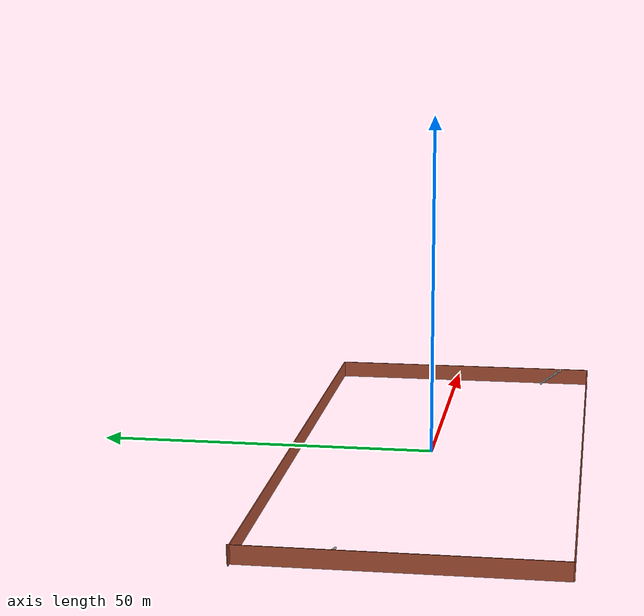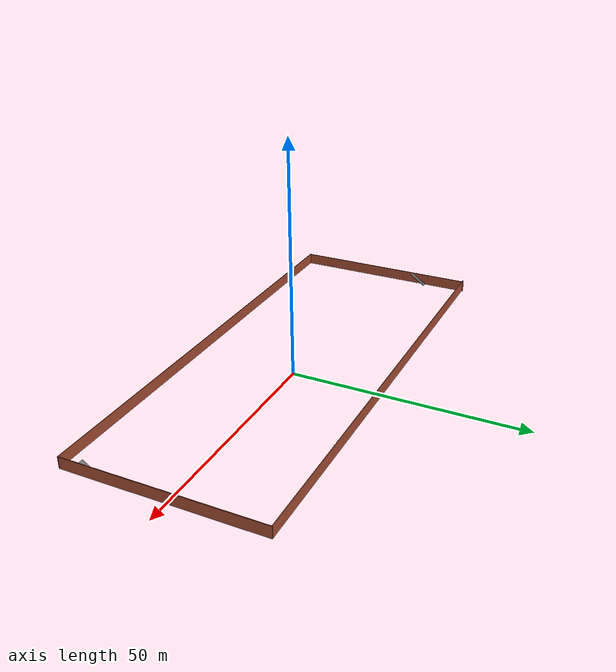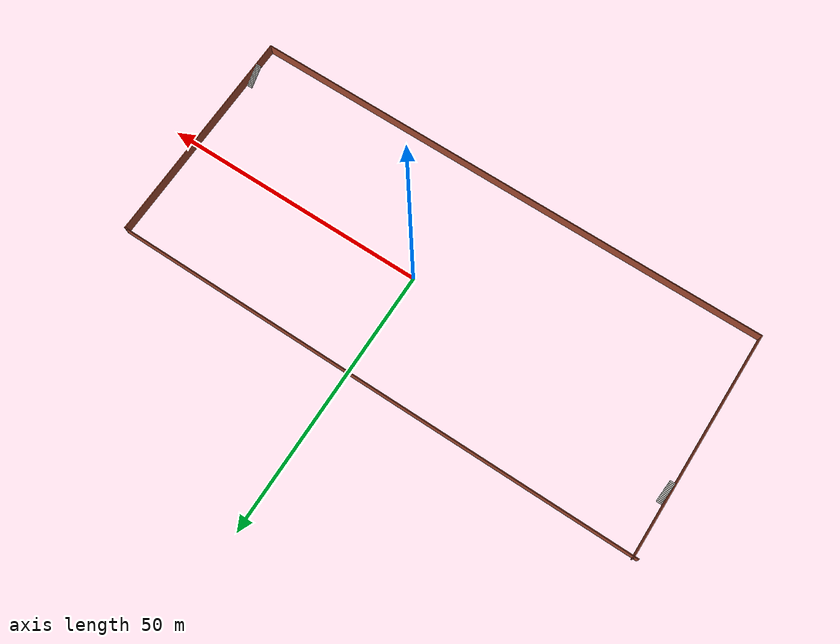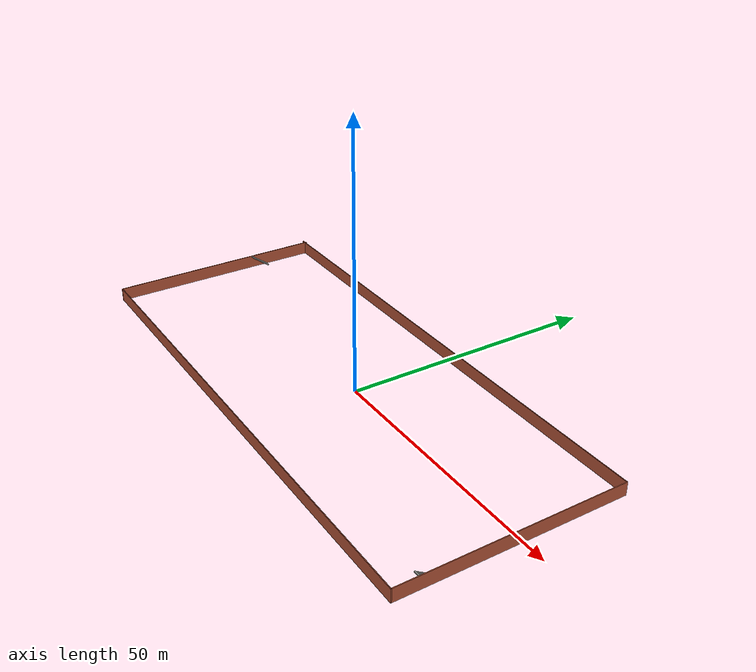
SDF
<?xml version='1.0'?>
<sdf version='1.7'>
  <model name='warehouse2'>
    <pose>-4.40076 -1.13581 0 0 -0 0</pose>
    <link name='Stairs_0'>
      <visual name='Stairs_0_Visual_0'>
        <pose>-48.4043 11.0815 0.083333 0 -0 0</pose>
        <geometry>
          <box>
            <size>1 0.233333 0.166667</size>
          </box>
        </geometry>
        <material>
          <script>
            <uri>file://media/materials/scripts/gazebo.material</uri>
            <name>Gazebo/CeilingTiled</name>
          </script>
          <ambient>1 1 1 1</ambient>
        </material>
        <meta>
          <layer>0</layer>
        </meta>
      </visual>
      <collision name='Stairs_0_Collision_0'>
        <geometry>
          <box>
            <size>1 0.233333 0.166667</size>
          </box>
        </geometry>
        <pose>-48.4043 11.0815 0.083333 0 -0 0</pose>
      </collision>
      <visual name='Stairs_0_Visual_1'>
        <pose>-48.4043 10.8482 0.25 0 -0 0</pose>
        <geometry>
          <box>
            <size>1 0.233333 0.166667</size>
          </box>
        </geometry>
        <material>
          <script>
            <uri>file://media/materials/scripts/gazebo.material</uri>
            <name>Gazebo/CeilingTiled</name>
          </script>
          <ambient>1 1 1 1</ambient>
        </material>
        <meta>
          <layer>0</layer>
        </meta>
      </visual>
      <collision name='Stairs_0_Collision_1'>
        <geometry>
          <box>
            <size>1 0.233333 0.166667</size>
          </box>
        </geometry>
        <pose>-48.4043 10.8482 0.25 0 -0 0</pose>
      </collision>
      <visual name='Stairs_0_Visual_2'>
        <pose>-48.4043 10.6148 0.416667 0 -0 0</pose>
        <geometry>
          <box>
            <size>1 0.233333 0.166667</size>
          </box>
        </geometry>
        <material>
          <script>
            <uri>file://media/materials/scripts/gazebo.material</uri>
            <name>Gazebo/CeilingTiled</name>
          </script>
          <ambient>1 1 1 1</ambient>
        </material>
        <meta>
          <layer>0</layer>
        </meta>
      </visual>
      <collision name='Stairs_0_Collision_2'>
        <geometry>
          <box>
            <size>1 0.233333 0.166667</size>
          </box>
        </geometry>
        <pose>-48.4043 10.6148 0.416667 0 -0 0</pose>
      </collision>
      <visual name='Stairs_0_Visual_3'>
        <pose>-48.4043 10.3815 0.583333 0 -0 0</pose>
        <geometry>
          <box>
            <size>1 0.233333 0.166667</size>
          </box>
        </geometry>
        <material>
          <script>
            <uri>file://media/materials/scripts/gazebo.material</uri>
            <name>Gazebo/CeilingTiled</name>
          </script>
          <ambient>1 1 1 1</ambient>
        </material>
        <meta>
          <layer>0</layer>
        </meta>
      </visual>
      <collision name='Stairs_0_Collision_3'>
        <geometry>
          <box>
            <size>1 0.233333 0.166667</size>
          </box>
        </geometry>
        <pose>-48.4043 10.3815 0.583333 0 -0 0</pose>
      </collision>
      <visual name='Stairs_0_Visual_4'>
        <pose>-48.4043 10.1482 0.75 0 -0 0</pose>
        <geometry>
          <box>
            <size>1 0.233333 0.166667</size>
          </box>
        </geometry>
        <material>
          <script>
            <uri>file://media/materials/scripts/gazebo.material</uri>
            <name>Gazebo/CeilingTiled</name>
          </script>
          <ambient>1 1 1 1</ambient>
        </material>
        <meta>
          <layer>0</layer>
        </meta>
      </visual>
      <collision name='Stairs_0_Collision_4'>
        <geometry>
          <box>
            <size>1 0.233333 0.166667</size>
          </box>
        </geometry>
        <pose>-48.4043 10.1482 0.75 0 -0 0</pose>
      </collision>
      <visual name='Stairs_0_Visual_5'>
        <pose>-48.4043 9.91483 0.916667 0 -0 0</pose>
        <geometry>
          <box>
            <size>1 0.233333 0.166667</size>
          </box>
        </geometry>
        <material>
          <script>
            <uri>file://media/materials/scripts/gazebo.material</uri>
            <name>Gazebo/CeilingTiled</name>
          </script>
          <ambient>1 1 1 1</ambient>
        </material>
        <meta>
          <layer>0</layer>
        </meta>
      </visual>
      <collision name='Stairs_0_Collision_5'>
        <geometry>
          <box>
            <size>1 0.233333 0.166667</size>
          </box>
        </geometry>
        <pose>-48.4043 9.91483 0.916667 0 -0 0</pose>
      </collision>
      <visual name='Stairs_0_Visual_6'>
        <pose>-48.4043 9.6815 1.08333 0 -0 0</pose>
        <geometry>
          <box>
            <size>1 0.233333 0.166667</size>
          </box>
        </geometry>
        <material>
          <script>
            <uri>file://media/materials/scripts/gazebo.material</uri>
            <name>Gazebo/CeilingTiled</name>
          </script>
          <ambient>1 1 1 1</ambient>
        </material>
        <meta>
          <layer>0</layer>
        </meta>
      </visual>
      <collision name='Stairs_0_Collision_6'>
        <geometry>
          <box>
            <size>1 0.233333 0.166667</size>
          </box>
        </geometry>
        <pose>-48.4043 9.6815 1.08333 0 -0 0</pose>
      </collision>
      <visual name='Stairs_0_Visual_7'>
        <pose>-48.4043 9.44816 1.25 0 -0 0</pose>
        <geometry>
          <box>
            <size>1 0.233333 0.166667</size>
          </box>
        </geometry>
        <material>
          <script>
            <uri>file://media/materials/scripts/gazebo.material</uri>
            <name>Gazebo/CeilingTiled</name>
          </script>
          <ambient>1 1 1 1</ambient>
        </material>
        <meta>
          <layer>0</layer>
        </meta>
      </visual>
      <collision name='Stairs_0_Collision_7'>
        <geometry>
          <box>
            <size>1 0.233333 0.166667</size>
          </box>
        </geometry>
        <pose>-48.4043 9.44816 1.25 0 -0 0</pose>
      </collision>
      <visual name='Stairs_0_Visual_8'>
        <pose>-48.4043 9.21483 1.41667 0 -0 0</pose>
        <geometry>
          <box>
            <size>1 0.233333 0.166667</size>
          </box>
        </geometry>
        <material>
          <script>
            <uri>file://media/materials/scripts/gazebo.material</uri>
            <name>Gazebo/CeilingTiled</name>
          </script>
          <ambient>1 1 1 1</ambient>
        </material>
        <meta>
          <layer>0</layer>
        </meta>
      </visual>
      <collision name='Stairs_0_Collision_8'>
        <geometry>
          <box>
            <size>1 0.233333 0.166667</size>
          </box>
        </geometry>
        <pose>-48.4043 9.21483 1.41667 0 -0 0</pose>
      </collision>
      <visual name='Stairs_0_Visual_9'>
        <pose>-48.4043 8.9815 1.58333 0 -0 0</pose>
        <geometry>
          <box>
            <size>1 0.233333 0.166667</size>
          </box>
        </geometry>
        <material>
          <script>
            <uri>file://media/materials/scripts/gazebo.material</uri>
            <name>Gazebo/CeilingTiled</name>
          </script>
          <ambient>1 1 1 1</ambient>
        </material>
        <meta>
          <layer>0</layer>
        </meta>
      </visual>
      <collision name='Stairs_0_Collision_9'>
        <geometry>
          <box>
            <size>1 0.233333 0.166667</size>
          </box>
        </geometry>
        <pose>-48.4043 8.9815 1.58333 0 -0 0</pose>
      </collision>
      <visual name='Stairs_0_Visual_10'>
        <pose>-48.4043 8.74817 1.75 0 -0 0</pose>
        <geometry>
          <box>
            <size>1 0.233333 0.166667</size>
          </box>
        </geometry>
        <material>
          <script>
            <uri>file://media/materials/scripts/gazebo.material</uri>
            <name>Gazebo/CeilingTiled</name>
          </script>
          <ambient>1 1 1 1</ambient>
        </material>
        <meta>
          <layer>0</layer>
        </meta>
      </visual>
      <collision name='Stairs_0_Collision_10'>
        <geometry>
          <box>
            <size>1 0.233333 0.166667</size>
          </box>
        </geometry>
        <pose>-48.4043 8.74817 1.75 0 -0 0</pose>
      </collision>
      <visual name='Stairs_0_Visual_11'>
        <pose>-48.4043 8.51483 1.91667 0 -0 0</pose>
        <geometry>
          <box>
            <size>1 0.233333 0.166667</size>
          </box>
        </geometry>
        <material>
          <script>
            <uri>file://media/materials/scripts/gazebo.material</uri>
            <name>Gazebo/CeilingTiled</name>
          </script>
          <ambient>1 1 1 1</ambient>
        </material>
        <meta>
          <layer>0</layer>
        </meta>
      </visual>
      <collision name='Stairs_0_Collision_11'>
        <geometry>
          <box>
            <size>1 0.233333 0.166667</size>
          </box>
        </geometry>
        <pose>-48.4043 8.51483 1.91667 0 -0 0</pose>
      </collision>
      <visual name='Stairs_0_Visual_12'>
        <pose>-48.4043 8.2815 2.08333 0 -0 0</pose>
        <geometry>
          <box>
            <size>1 0.233333 0.166667</size>
          </box>
        </geometry>
        <material>
          <script>
            <uri>file://media/materials/scripts/gazebo.material</uri>
            <name>Gazebo/CeilingTiled</name>
          </script>
          <ambient>1 1 1 1</ambient>
        </material>
        <meta>
          <layer>0</layer>
        </meta>
      </visual>
      <collision name='Stairs_0_Collision_12'>
        <geometry>
          <box>
            <size>1 0.233333 0.166667</size>
          </box>
        </geometry>
        <pose>-48.4043 8.2815 2.08333 0 -0 0</pose>
      </collision>
      <visual name='Stairs_0_Visual_13'>
        <pose>-48.4043 8.04816 2.25 0 -0 0</pose>
        <geometry>
          <box>
            <size>1 0.233333 0.166667</size>
          </box>
        </geometry>
        <material>
          <script>
            <uri>file://media/materials/scripts/gazebo.material</uri>
            <name>Gazebo/CeilingTiled</name>
          </script>
          <ambient>1 1 1 1</ambient>
        </material>
        <meta>
          <layer>0</layer>
        </meta>
      </visual>
      <collision name='Stairs_0_Collision_13'>
        <geometry>
          <box>
            <size>1 0.233333 0.166667</size>
          </box>
        </geometry>
        <pose>-48.4043 8.04816 2.25 0 -0 0</pose>
      </collision>
      <visual name='Stairs_0_Visual_14'>
        <pose>-48.4043 7.81483 2.41667 0 -0 0</pose>
        <geometry>
          <box>
            <size>1 0.233333 0.166667</size>
          </box>
        </geometry>
        <material>
          <script>
            <uri>file://media/materials/scripts/gazebo.material</uri>
            <name>Gazebo/CeilingTiled</name>
          </script>
          <ambient>1 1 1 1</ambient>
        </material>
        <meta>
          <layer>0</layer>
        </meta>
      </visual>
      <collision name='Stairs_0_Collision_14'>
        <geometry>
          <box>
            <size>1 0.233333 0.166667</size>
          </box>
        </geometry>
        <pose>-48.4043 7.81483 2.41667 0 -0 0</pose>
      </collision>
    </link>
    <link name='Stairs_1'>
      <visual name='Stairs_1_Visual_0'>
        <pose>49.2029 -13.297 0.083333 0 -0 0</pose>
        <geometry>
          <box>
            <size>1 0.233333 0.166667</size>
          </box>
        </geometry>
        <material>
          <script>
            <uri>file://media/materials/scripts/gazebo.material</uri>
            <name>Gazebo/CeilingTiled</name>
          </script>
          <ambient>1 1 1 1</ambient>
        </material>
        <meta>
          <layer>0</layer>
        </meta>
      </visual>
      <collision name='Stairs_1_Collision_0'>
        <geometry>
          <box>
            <size>1 0.233333 0.166667</size>
          </box>
        </geometry>
        <pose>49.2029 -13.297 0.083333 0 -0 0</pose>
      </collision>
      <visual name='Stairs_1_Visual_1'>
        <pose>49.2029 -13.5304 0.25 0 -0 0</pose>
        <geometry>
          <box>
            <size>1 0.233333 0.166667</size>
          </box>
        </geometry>
        <material>
          <script>
            <uri>file://media/materials/scripts/gazebo.material</uri>
            <name>Gazebo/CeilingTiled</name>
          </script>
          <ambient>1 1 1 1</ambient>
        </material>
        <meta>
          <layer>0</layer>
        </meta>
      </visual>
      <collision name='Stairs_1_Collision_1'>
        <geometry>
          <box>
            <size>1 0.233333 0.166667</size>
          </box>
        </geometry>
        <pose>49.2029 -13.5304 0.25 0 -0 0</pose>
      </collision>
      <visual name='Stairs_1_Visual_2'>
        <pose>49.2029 -13.7637 0.416667 0 -0 0</pose>
        <geometry>
          <box>
            <size>1 0.233333 0.166667</size>
          </box>
        </geometry>
        <material>
          <script>
            <uri>file://media/materials/scripts/gazebo.material</uri>
            <name>Gazebo/CeilingTiled</name>
          </script>
          <ambient>1 1 1 1</ambient>
        </material>
        <meta>
          <layer>0</layer>
        </meta>
      </visual>
      <collision name='Stairs_1_Collision_2'>
        <geometry>
          <box>
            <size>1 0.233333 0.166667</size>
          </box>
        </geometry>
        <pose>49.2029 -13.7637 0.416667 0 -0 0</pose>
      </collision>
      <visual name='Stairs_1_Visual_3'>
        <pose>49.2029 -13.997 0.583333 0 -0 0</pose>
        <geometry>
          <box>
            <size>1 0.233333 0.166667</size>
          </box>
        </geometry>
        <material>
          <script>
            <uri>file://media/materials/scripts/gazebo.material</uri>
            <name>Gazebo/CeilingTiled</name>
          </script>
          <ambient>1 1 1 1</ambient>
        </material>
        <meta>
          <layer>0</layer>
        </meta>
      </visual>
      <collision name='Stairs_1_Collision_3'>
        <geometry>
          <box>
            <size>1 0.233333 0.166667</size>
          </box>
        </geometry>
        <pose>49.2029 -13.997 0.583333 0 -0 0</pose>
      </collision>
      <visual name='Stairs_1_Visual_4'>
        <pose>49.2029 -14.2304 0.75 0 -0 0</pose>
        <geometry>
          <box>
            <size>1 0.233333 0.166667</size>
          </box>
        </geometry>
        <material>
          <script>
            <uri>file://media/materials/scripts/gazebo.material</uri>
            <name>Gazebo/CeilingTiled</name>
          </script>
          <ambient>1 1 1 1</ambient>
        </material>
        <meta>
          <layer>0</layer>
        </meta>
      </visual>
      <collision name='Stairs_1_Collision_4'>
        <geometry>
          <box>
            <size>1 0.233333 0.166667</size>
          </box>
        </geometry>
        <pose>49.2029 -14.2304 0.75 0 -0 0</pose>
      </collision>
      <visual name='Stairs_1_Visual_5'>
        <pose>49.2029 -14.4637 0.916667 0 -0 0</pose>
        <geometry>
          <box>
            <size>1 0.233333 0.166667</size>
          </box>
        </geometry>
        <material>
          <script>
            <uri>file://media/materials/scripts/gazebo.material</uri>
            <name>Gazebo/CeilingTiled</name>
          </script>
          <ambient>1 1 1 1</ambient>
        </material>
        <meta>
          <layer>0</layer>
        </meta>
      </visual>
      <collision name='Stairs_1_Collision_5'>
        <geometry>
          <box>
            <size>1 0.233333 0.166667</size>
          </box>
        </geometry>
        <pose>49.2029 -14.4637 0.916667 0 -0 0</pose>
      </collision>
      <visual name='Stairs_1_Visual_6'>
        <pose>49.2029 -14.697 1.08333 0 -0 0</pose>
        <geometry>
          <box>
            <size>1 0.233333 0.166667</size>
          </box>
        </geometry>
        <material>
          <script>
            <uri>file://media/materials/scripts/gazebo.material</uri>
            <name>Gazebo/CeilingTiled</name>
          </script>
          <ambient>1 1 1 1</ambient>
        </material>
        <meta>
          <layer>0</layer>
        </meta>
      </visual>
      <collision name='Stairs_1_Collision_6'>
        <geometry>
          <box>
            <size>1 0.233333 0.166667</size>
          </box>
        </geometry>
        <pose>49.2029 -14.697 1.08333 0 -0 0</pose>
      </collision>
      <visual name='Stairs_1_Visual_7'>
        <pose>49.2029 -14.9304 1.25 0 -0 0</pose>
        <geometry>
          <box>
            <size>1 0.233333 0.166667</size>
          </box>
        </geometry>
        <material>
          <script>
            <uri>file://media/materials/scripts/gazebo.material</uri>
            <name>Gazebo/CeilingTiled</name>
          </script>
          <ambient>1 1 1 1</ambient>
        </material>
        <meta>
          <layer>0</layer>
        </meta>
      </visual>
      <collision name='Stairs_1_Collision_7'>
        <geometry>
          <box>
            <size>1 0.233333 0.166667</size>
          </box>
        </geometry>
        <pose>49.2029 -14.9304 1.25 0 -0 0</pose>
      </collision>
      <visual name='Stairs_1_Visual_8'>
        <pose>49.2029 -15.1637 1.41667 0 -0 0</pose>
        <geometry>
          <box>
            <size>1 0.233333 0.166667</size>
          </box>
        </geometry>
        <material>
          <script>
            <uri>file://media/materials/scripts/gazebo.material</uri>
            <name>Gazebo/CeilingTiled</name>
          </script>
          <ambient>1 1 1 1</ambient>
        </material>
        <meta>
          <layer>0</layer>
        </meta>
      </visual>
      <collision name='Stairs_1_Collision_8'>
        <geometry>
          <box>
            <size>1 0.233333 0.166667</size>
          </box>
        </geometry>
        <pose>49.2029 -15.1637 1.41667 0 -0 0</pose>
      </collision>
      <visual name='Stairs_1_Visual_9'>
        <pose>49.2029 -15.397 1.58333 0 -0 0</pose>
        <geometry>
          <box>
            <size>1 0.233333 0.166667</size>
          </box>
        </geometry>
        <material>
          <script>
            <uri>file://media/materials/scripts/gazebo.material</uri>
            <name>Gazebo/CeilingTiled</name>
          </script>
          <ambient>1 1 1 1</ambient>
        </material>
        <meta>
          <layer>0</layer>
        </meta>
      </visual>
      <collision name='Stairs_1_Collision_9'>
        <geometry>
          <box>
            <size>1 0.233333 0.166667</size>
          </box>
        </geometry>
        <pose>49.2029 -15.397 1.58333 0 -0 0</pose>
      </collision>
      <visual name='Stairs_1_Visual_10'>
        <pose>49.2029 -15.6304 1.75 0 -0 0</pose>
        <geometry>
          <box>
            <size>1 0.233333 0.166667</size>
          </box>
        </geometry>
        <material>
          <script>
            <uri>file://media/materials/scripts/gazebo.material</uri>
            <name>Gazebo/CeilingTiled</name>
          </script>
          <ambient>1 1 1 1</ambient>
        </material>
        <meta>
          <layer>0</layer>
        </meta>
      </visual>
      <collision name='Stairs_1_Collision_10'>
        <geometry>
          <box>
            <size>1 0.233333 0.166667</size>
          </box>
        </geometry>
        <pose>49.2029 -15.6304 1.75 0 -0 0</pose>
      </collision>
      <visual name='Stairs_1_Visual_11'>
        <pose>49.2029 -15.8637 1.91667 0 -0 0</pose>
        <geometry>
          <box>
            <size>1 0.233333 0.166667</size>
          </box>
        </geometry>
        <material>
          <script>
            <uri>file://media/materials/scripts/gazebo.material</uri>
            <name>Gazebo/CeilingTiled</name>
          </script>
          <ambient>1 1 1 1</ambient>
        </material>
        <meta>
          <layer>0</layer>
        </meta>
      </visual>
      <collision name='Stairs_1_Collision_11'>
        <geometry>
          <box>
            <size>1 0.233333 0.166667</size>
          </box>
        </geometry>
        <pose>49.2029 -15.8637 1.91667 0 -0 0</pose>
      </collision>
      <visual name='Stairs_1_Visual_12'>
        <pose>49.2029 -16.097 2.08333 0 -0 0</pose>
        <geometry>
          <box>
            <size>1 0.233333 0.166667</size>
          </box>
        </geometry>
        <material>
          <script>
            <uri>file://media/materials/scripts/gazebo.material</uri>
            <name>Gazebo/CeilingTiled</name>
          </script>
          <ambient>1 1 1 1</ambient>
        </material>
        <meta>
          <layer>0</layer>
        </meta>
      </visual>
      <collision name='Stairs_1_Collision_12'>
        <geometry>
          <box>
            <size>1 0.233333 0.166667</size>
          </box>
        </geometry>
        <pose>49.2029 -16.097 2.08333 0 -0 0</pose>
      </collision>
      <visual name='Stairs_1_Visual_13'>
        <pose>49.2029 -16.3304 2.25 0 -0 0</pose>
        <geometry>
          <box>
            <size>1 0.233333 0.166667</size>
          </box>
        </geometry>
        <material>
          <script>
            <uri>file://media/materials/scripts/gazebo.material</uri>
            <name>Gazebo/CeilingTiled</name>
          </script>
          <ambient>1 1 1 1</ambient>
        </material>
        <meta>
          <layer>0</layer>
        </meta>
      </visual>
      <collision name='Stairs_1_Collision_13'>
        <geometry>
          <box>
            <size>1 0.233333 0.166667</size>
          </box>
        </geometry>
        <pose>49.2029 -16.3304 2.25 0 -0 0</pose>
      </collision>
      <visual name='Stairs_1_Visual_14'>
        <pose>49.2029 -16.5637 2.41667 0 -0 0</pose>
        <geometry>
          <box>
            <size>1 0.233333 0.166667</size>
          </box>
        </geometry>
        <material>
          <script>
            <uri>file://media/materials/scripts/gazebo.material</uri>
            <name>Gazebo/CeilingTiled</name>
          </script>
          <ambient>1 1 1 1</ambient>
        </material>
        <meta>
          <layer>0</layer>
        </meta>
      </visual>
      <collision name='Stairs_1_Collision_14'>
        <geometry>
          <box>
            <size>1 0.233333 0.166667</size>
          </box>
        </geometry>
        <pose>49.2029 -16.5637 2.41667 0 -0 0</pose>
      </collision>
    </link>
    <link name='Wall_1'>
      <collision name='Wall_1_Collision'>
        <geometry>
          <box>
            <size>99.75 0.15 2.5</size>
          </box>
        </geometry>
        <pose>0 0 1.25 0 -0 0</pose>
      </collision>
      <visual name='Wall_1_Visual'>
        <pose>0 0 1.25 0 -0 0</pose>
        <geometry>
          <box>
            <size>99.75 0.15 2.5</size>
          </box>
        </geometry>
        <material>
          <script>
            <uri>file://media/materials/scripts/gazebo.material</uri>
            <name>Gazebo/Bricks</name>
          </script>
          <ambient>1 1 1 1</ambient>
        </material>
        <meta>
          <layer>0</layer>
        </meta>
      </visual>
      <pose>-2e-06 20.8 0 0 -0 0</pose>
    </link>
    <link name='Wall_2'>
      <collision name='Wall_2_Collision'>
        <geometry>
          <box>
            <size>42 0.15 2.5</size>
          </box>
        </geometry>
        <pose>0 0 1.25 0 -0 0</pose>
      </collision>
      <visual name='Wall_2_Visual'>
        <pose>0 0 1.25 0 -0 0</pose>
        <geometry>
          <box>
            <size>42 0.15 2.5</size>
          </box>
        </geometry>
        <material>
          <script>
            <uri>file://media/materials/scripts/gazebo.material</uri>
            <name>Gazebo/Bricks</name>
          </script>
          <ambient>1 1 1 1</ambient>
        </material>
        <meta>
          <layer>0</layer>
        </meta>
      </visual>
      <pose>49.8 -0.125 0 0 -0 -1.5708</pose>
    </link>
    <link name='Wall_3'>
      <collision name='Wall_3_Collision'>
        <geometry>
          <box>
            <size>99 0.15 2.5</size>
          </box>
        </geometry>
        <pose>0 0 1.25 0 -0 0</pose>
      </collision>
      <visual name='Wall_3_Visual'>
        <pose>0 0 1.25 0 -0 0</pose>
        <geometry>
          <box>
            <size>99 0.15 2.5</size>
          </box>
        </geometry>
        <material>
          <script>
            <uri>file://media/materials/scripts/gazebo.material</uri>
            <name>Gazebo/Bricks</name>
          </script>
          <ambient>1 1 1 1</ambient>
        </material>
        <meta>
          <layer>0</layer>
        </meta>
      </visual>
      <pose>0.374998 -21.05 0 0 -0 3.14159</pose>
    </link>
    <link name='Wall_4'>
      <collision name='Wall_4_Collision'>
        <geometry>
          <box>
            <size>42.25 0.15 2.5</size>
          </box>
        </geometry>
        <pose>0 0 1.25 0 -0 0</pose>
      </collision>
      <visual name='Wall_4_Visual'>
        <pose>0 0 1.25 0 -0 0</pose>
        <geometry>
          <box>
            <size>42.25 0.15 2.5</size>
          </box>
        </geometry>
        <material>
          <script>
            <uri>file://media/materials/scripts/gazebo.material</uri>
            <name>Gazebo/Bricks</name>
          </script>
          <ambient>1 1 1 1</ambient>
        </material>
        <meta>
          <layer>0</layer>
        </meta>
      </visual>
      <pose>-49.05 0 0 0 -0 1.5708</pose>
    </link>
    <static>1</static>
  </model>
</sdf>
